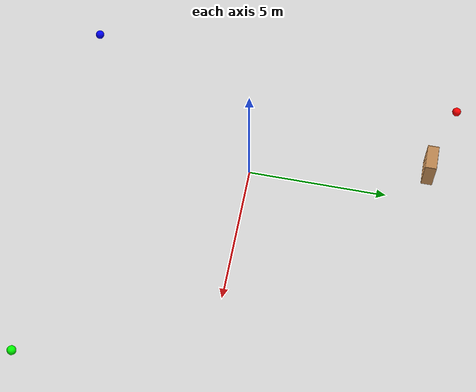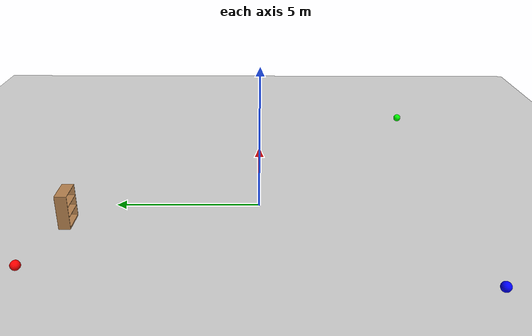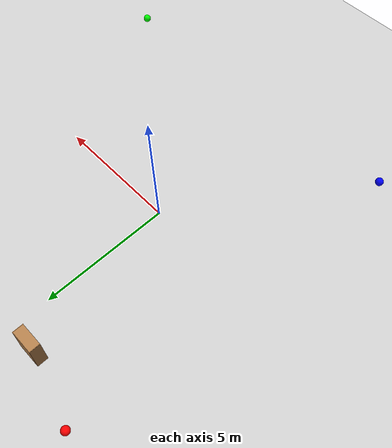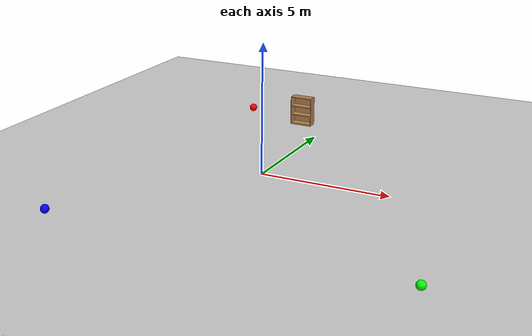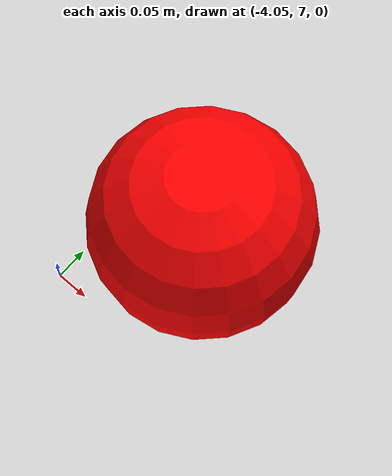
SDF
<sdf version="1.6">
 <world name="default">
  <light name="sun" type="directional">
   <pose>0 0 10 0 -0 0</pose>
   <diffuse>0.8 0.8 0.8 1</diffuse>
   <specular>0.2 0.2 0.2 1</specular>
   <attenuation>
    <range>1000</range>
    <constant>0.9</constant>
    <linear>0.01</linear>
    <quadratic>0.001</quadratic>
   </attenuation>
   <direction>-0.5 0.1 -0.9</direction>
  </light>
  <model name="ground_plane">
   <static>1</static>
   <link name="link">
    <collision name="collision">
     <geometry><plane><normal>0 0 1</normal><size>100 100</size></plane></geometry>
     <surface><friction><ode><mu>100</mu><mu2>50</mu2></ode></friction></surface>
    </collision>
    <visual name="visual">
     <cast_shadows>0</cast_shadows>
     <geometry><plane><normal>0 0 1</normal><size>100 100</size></plane></geometry>
     <material>
      <script><uri>file://media/materials/scripts/gazebo.material</uri><name>Gazebo/Grey</name></script>
     </material>
    </visual>
    <velocity_decay><linear>0</linear><angular>0</angular></velocity_decay>
   </link>
  </model>
  <model name="red_ball">
   <pose>-3.90471 7.15165 0.16 0 -0 0</pose>
   <link name="main">
    <visual name="ball_visual">
     <geometry><sphere><radius>0.16</radius></sphere></geometry>
     <material>
      <ambient>1 0 0 1</ambient>
      <diffuse>1 0 0 1</diffuse>
      <specular>0.1 0.1 0.1 1</specular>
      <emissive>0 0 0 0</emissive>
     </material>
    </visual>
    <collision name="target_collision">
     <geometry><sphere><radius>0.16</radius></sphere></geometry>
     <surface><friction><ode><mu>0</mu><mu2>0</mu2><slip1>1</slip1><slip2>1</slip2></ode></friction></surface>
    </collision>
    <inertial>
     <inertia><ixx>1</ixx><ixy>0</ixy><ixz>0</ixz><iyy>1</iyy><iyz>0</iyz><izz>1</izz></inertia>
     <mass>1</mass>
    </inertial>
   </link>
  </model>
  <model name="green_ball">
   <pose>8.21698 -6.50585 0.16 0 -0 0</pose>
   <link name="main">
    <visual name="green_visual">
     <geometry><sphere><radius>0.16</radius></sphere></geometry>
     <material>
      <ambient>0 1 0 1</ambient>
      <diffuse>0 1 0 1</diffuse>
      <specular>0.1 0.1 0.1 1</specular>
      <emissive>0 0 0 0</emissive>
     </material>
    </visual>
    <collision name="green_collision">
     <geometry><sphere><radius>0.16</radius></sphere></geometry>
     <surface><friction><ode><mu>0</mu><mu2>0</mu2><slip1>1</slip1><slip2>1</slip2></ode></friction></surface>
    </collision>
    <inertial>
     <inertia><ixx>1</ixx><ixy>0</ixy><ixz>0</ixz><iyy>1</iyy><iyz>0</iyz><izz>1</izz></inertia>
     <mass>1</mass>
    </inertial>
   </link>
  </model>
  <model name="blue_ball">
   <pose>-4.82213 -6.83339 0.16 0 -0 0</pose>
   <link name="main">
    <visual name="blue_visual">
     <geometry><sphere><radius>0.16</radius></sphere></geometry>
     <material>
      <ambient>0 0 1 1</ambient>
      <diffuse>0 0 1 1</diffuse>
      <specular>0.1 0.1 0.1 1</specular>
      <emissive>0 0 0 0</emissive>
     </material>
    </visual>
    <collision name="blue_collision">
     <geometry><sphere><radius>0.16</radius></sphere></geometry>
     <surface><friction><ode><mu>0</mu><mu2>0</mu2><slip1>1</slip1><slip2>1</slip2></ode></friction></surface>
    </collision>
    <inertial>
     <inertia><ixx>1</ixx><ixy>0</ixy><ixz>0</ixz><iyy>1</iyy><iyz>0</iyz><izz>1</izz></inertia>
     <mass>1</mass>
    </inertial>
   </link>
  </model>
  <physics name="default_physics" default="0" type="ode">
   <max_step_size>0.001</max_step_size>
   <real_time_factor>1</real_time_factor>
   <real_time_update_rate>1000</real_time_update_rate>
  </physics>
  <scene><ambient>0.4 0.4 0.4 1</ambient><background>0.7 0.7 0.7 1</background><shadows>1</shadows></scene>
  <spherical_coordinates>
   <surface_model>EARTH_WGS84</surface_model>
   <latitude_deg>0</latitude_deg>
   <longitude_deg>0</longitude_deg>
   <elevation>0</elevation>
   <heading_deg>0</heading_deg>
  </spherical_coordinates>
  <gravity>0 0 -9.8</gravity>
  <magnetic_field>6e-06 2.3e-05 -4.2e-05</magnetic_field>
  <atmosphere type="adiabatic"/>
  <model name="bookshelf">
   <static>1</static>
   <link name="link">
    <inertial><mass>1</mass></inertial>
    <collision name="back">
     <pose>0 0.005 0.6 0 -0 0</pose>
     <geometry><box><size>0.9 0.01 1.2</size></box></geometry>
    </collision>
    <visual name="visual1">
     <pose>0 0.005 0.6 0 -0 0</pose>
     <geometry><box><size>0.9 0.01 1.2</size></box></geometry>
     <material>
      <script><uri>file://media/materials/scripts/gazebo.material</uri><name>Gazebo/Wood</name></script>
     </material>
    </visual>
    <collision name="left_side">
     <pose>0.45 -0.195 0.6 0 -0 0</pose>
     <geometry><box><size>0.02 0.4 1.2</size></box></geometry>
    </collision>
    <visual name="visual2">
     <pose>0.45 -0.195 0.6 0 -0 0</pose>
     <geometry><box><size>0.02 0.4 1.2</size></box></geometry>
     <material>
      <script><uri>file://media/materials/scripts/gazebo.material</uri><name>Gazebo/Wood</name></script>
     </material>
    </visual>
    <collision name="right_side">
     <pose>-0.45 -0.195 0.6 0 -0 0</pose>
     <geometry><box><size>0.02 0.4 1.2</size></box></geometry>
    </collision>
    <visual name="visual3">
     <pose>-0.45 -0.195 0.6 0 -0 0</pose>
     <geometry><box><size>0.02 0.4 1.2</size></box></geometry>
     <material>
      <script><uri>file://media/materials/scripts/gazebo.material</uri><name>Gazebo/Wood</name></script>
     </material>
    </visual>
    <collision name="bottom">
     <pose>0 -0.195 0.03 0 -0 0</pose>
     <geometry><box><size>0.88 0.4 0.06</size></box></geometry>
    </collision>
    <visual name="visual4">
     <pose>0 -0.195 0.03 0 -0 0</pose>
     <geometry><box><size>0.88 0.4 0.06</size></box></geometry>
     <material>
      <script><uri>file://media/materials/scripts/gazebo.material</uri><name>Gazebo/Wood</name></script>
     </material>
    </visual>
    <collision name="top">
     <pose>0 -0.195 1.19 0 -0 0</pose>
     <geometry><box><size>0.88 0.4 0.02</size></box></geometry>
    </collision>
    <visual name="visual5">
     <pose>0 -0.195 1.19 0 -0 0</pose>
     <geometry><box><size>0.88 0.4 0.02</size></box></geometry>
     <material>
      <script><uri>file://media/materials/scripts/gazebo.material</uri><name>Gazebo/Wood</name></script>
     </material>
    </visual>
    <collision name="low_shelf">
     <pose>0 -0.195 0.43 0 -0 0</pose>
     <geometry><box><size>0.88 0.4 0.02</size></box></geometry>
    </collision>
    <visual name="visual6">
     <pose>0 -0.195 0.43 0 -0 0</pose>
     <geometry><box><size>0.88 0.4 0.02</size></box></geometry>
     <material>
      <script><uri>file://media/materials/scripts/gazebo.material</uri><name>Gazebo/Wood</name></script>
     </material>
    </visual>
    <collision name="high_shelf">
     <pose>0 -0.195 0.8 0 -0 0</pose>
     <geometry><box><size>0.88 0.4 0.02</size></box></geometry>
    </collision>
    <visual name="visual7">
     <pose>0 -0.195 0.8 0 -0 0</pose>
     <geometry><box><size>0.88 0.4 0.02</size></box></geometry>
     <material>
      <script><uri>file://media/materials/scripts/gazebo.material</uri><name>Gazebo/Wood</name></script>
     </material>
    </visual>
   </link>
   <pose>-1.19011 6.58109 0 0 -0 0</pose>
  </model>
 </world>
</sdf>
